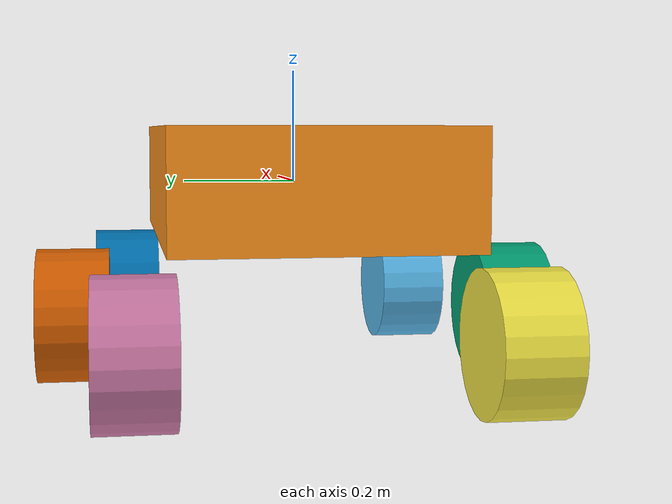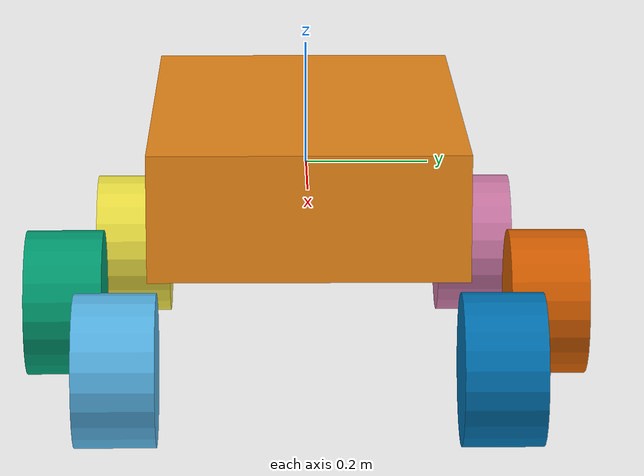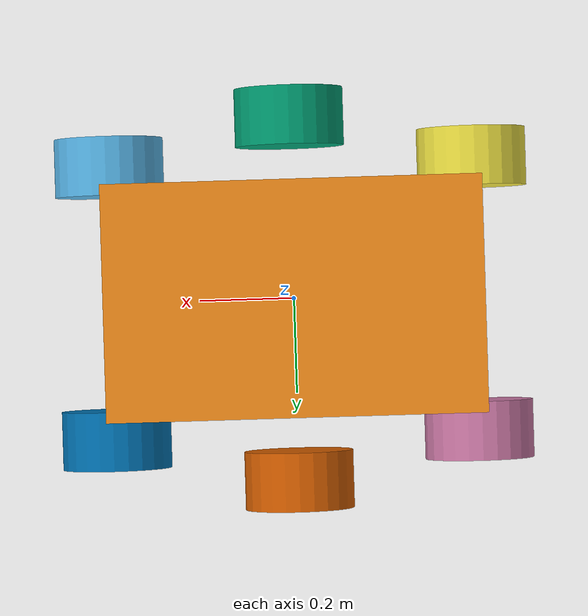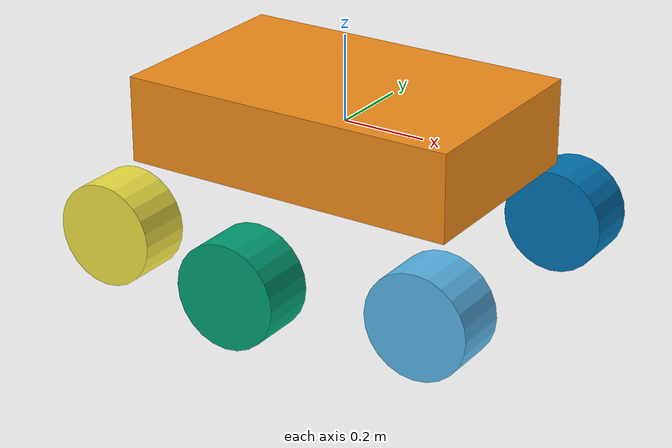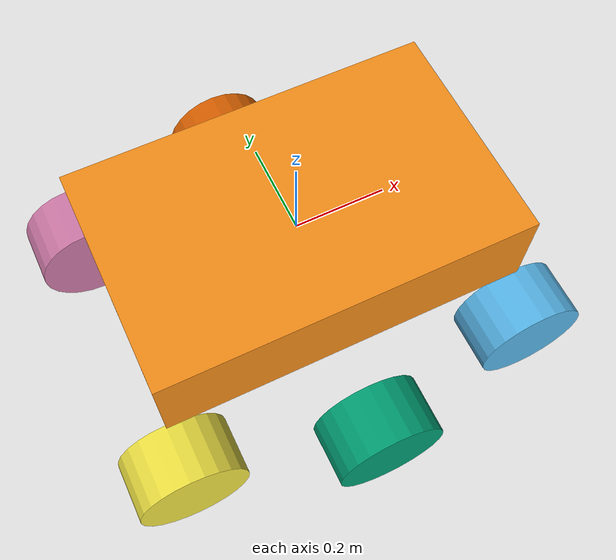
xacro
<?xml version="1.0"?>
<robot xmlns:xacro="http://www.ros.org/wiki/xacro" name="rover">

  <xacro:include filename="$(find protobot_description)/urdf/macro.xacro"/>

  <link name="base_link">
    <visual>
      <geometry>
        <box size="${body_length} ${body_width} ${body_height}"/>
      </geometry>
    </visual>
    <collision>
      <geometry>
        <box size="${body_length} ${body_width} ${body_height}"/>
      </geometry>
    </collision>
    <inertial>
      <origin xyz="0 0 0" rpy="0 0 0"/>
      <mass value="${body_mass}"/>
      <xacro:box_inertia m="${body_mass}" x="${body_length}" y="${body_width}" z="${body_height}"/>
    </inertial>
  </link>

  <link name="right_front_wheel"><xacro:wheel_visual_collision_inertia/></link>

  <joint name="right_front_wheel_pivot" type="continuous">
    <hardwareInterface>hardware_interface/VelocityJointInterface</hardwareInterface>
    <parent link="base_link"/>
    <child link="right_front_wheel"/>
    <origin xyz="${front_wheel_forward} -${front_wheel_out} -${wheel_height}"/>
    <axis xyz="0 1 0" />
  </joint>

  <link name="right_mid_wheel"><xacro:wheel_visual_collision_inertia/></link>

  <joint name="right_mid_wheel_pivot" type="continuous">
    <hardwareInterface>hardware_interface/VelocityJointInterface</hardwareInterface>
    <parent link="base_link"/>
    <child link="right_mid_wheel"/>
    <origin xyz="0 -${mid_wheel_out} -${wheel_height}"/>
    <axis xyz="0 1 0" />
  </joint>

  <link name="right_back_wheel"><xacro:wheel_visual_collision_inertia/></link>

  <joint name="right_back_wheel_pivot" type="continuous">
    <hardwareInterface>hardware_interface/VelocityJointInterface</hardwareInterface>
    <parent link="base_link"/>
    <child link="right_back_wheel"/>
    <origin xyz="-${rear_wheel_back} -${rear_wheel_out} -${wheel_height}"/>
    <axis xyz="0 1 0" />
  </joint>

  <link name="left_front_wheel"><xacro:wheel_visual_collision_inertia/></link>

  <joint name="left_front_wheel_pivot" type="continuous">
    <parent link="base_link"/>
    <child link="left_front_wheel"/>
    <origin xyz="${front_wheel_forward} ${front_wheel_out} -${wheel_height}"/>
    <axis xyz="0 1 0" />
  </joint>

  <link name="left_mid_wheel"><xacro:wheel_visual_collision_inertia/></link>

  <joint name="left_mid_wheel_pivot" type="continuous">
    <hardwareInterface>hardware_interface/VelocityJointInterface</hardwareInterface>
    <parent link="base_link"/>
    <child link="left_mid_wheel"/>
    <origin xyz="0 ${mid_wheel_out} -${wheel_height}"/>
    <axis xyz="0 1 0" />
  </joint>

  <link name="left_back_wheel"><xacro:wheel_visual_collision_inertia/></link>

  <joint name="left_back_wheel_pivot" type="continuous">
    <hardwareInterface>hardware_interface/VelocityJointInterface</hardwareInterface>
    <parent link="base_link"/>
    <child link="left_back_wheel"/>
    <origin xyz="-${rear_wheel_back} ${rear_wheel_out} -${wheel_height}"/>
    <axis xyz="0 1 0" />
  </joint>

  <gazebo reference="base_link">
    <material>Gazebo/Orange</material>
  </gazebo>

  <link name="gps_imu_link">
  </link>

  <link name="gps"></link>

  <joint name="ublox_gps_joint" type="fixed">
	<parent link="base_link"/>
	<child link="gps"/>
	<origin xyz="0 0 0"/>
</joint>

  <joint name="gps_imu_joint" type="fixed">
	  <parent link="base_link"/>
	  <child link="gps_imu_link"/>
	  <origin xyz="0 0 0"/>
  </joint>

  <gazebo>
    <plugin filename="libgazebo_ros_control.so" name="gazebo_ros_control">
    </plugin>
  </gazebo>

  <gazebo>
	<plugin name="gps_controller" filename="libhector_gazebo_ros_gps.so">
		<updateRate>30.0</updateRate>
		<bodyName>gps_imu_link</bodyName>
		<topicName>gps/fix</topicName>
		<frameId>gps_imu_link</frameId>
		<gaussianNoise>0</gaussianNoise>
	</plugin>
  </gazebo>

  <gazebo>
     <plugin name="imu_plugin" filename="libgazebo_ros_imu.so">
      <alwaysOn>true</alwaysOn>
      <bodyName>gps_imu_link</bodyName>
      <topicName>imu/data</topicName>
      <serviceName>imu_service</serviceName>
      <gaussianNoise>0</gaussianNoise>
      <updateRate>20.0</updateRate>
    </plugin>
  </gazebo>

  <gazebo reference="camera_link">
     <sensor type="depth" name="depth_camera">
      <plugin name="camera_link_controller" filename="libgazebo_ros_openni_kinect.so">
          <baseline>0.2</baseline>
          <alwaysOn>true</alwaysOn>
          <updateRate>1.0</updateRate>
          <cameraName>camera</cameraName>
          <imageTopicName>color/image_raw</imageTopicName>
	  <cameraInfoTopicName>color/camera_info</cameraInfoTopicName>
	  <depthImageTopicName>depth/image_raw</depthImageTopicName>
	  <depthImageInfoTopicName>depth/camera_info</depthImageInfoTopicName>
	  <pointCloudTopicName>depth/pointcloud</pointCloudTopicName>
          <frameName>cam_link_optical</frameName>
          <pointCloudCutoff>0.1</pointCloudCutoff>
	  <pointCloudCutoffMax>5</pointCloudCutoffMax>
          <distortionK1>0.00000001</distortionK1>
          <distortionK2>0.00000001</distortionK2>
          <distortionK3>0.00000001</distortionK3>
          <distortionT1>0.00000001</distortionT1>
          <distortionT2>0.00000001</distortionT2>
          <CxPrime>0</CxPrime>
          <Cx>0</Cx>
          <Cy>0</Cy>
          <focalLength>0</focalLength>
          <hackBaseline>0</hackBaseline>
      </plugin>
     </sensor>
  </gazebo>

  <transmission name="left_front_trans">
    <type>transmission_interface/SimpleTransmission</type>
    <actuator name="motor1">
      <mechanicalReduction>1</mechanicalReduction>
    </actuator>
    <joint name="left_front_wheel_pivot">
      <hardwareInterface>hardware_interface/VelocityJointInterface</hardwareInterface>
    </joint>
  </transmission>

  <transmission name="left_middle_trans">
    <type>transmission_interface/SimpleTransmission</type>
    <actuator name="motor1">
      <mechanicalReduction>1</mechanicalReduction>
    </actuator>
    <joint name="left_mid_wheel_pivot">
      <hardwareInterface>hardware_interface/VelocityJointInterface</hardwareInterface>
    </joint>
  </transmission>

  <transmission name="left_back_trans">
    <type>transmission_interface/SimpleTransmission</type>
    <actuator name="motor1">
      <mechanicalReduction>1</mechanicalReduction>
    </actuator>
    <joint name="left_back_wheel_pivot">
      <hardwareInterface>hardware_interface/VelocityJointInterface</hardwareInterface>
    </joint>
  </transmission>

  <transmission name="right_front_trans">
    <type>transmission_interface/SimpleTransmission</type>
    <actuator name="motor1">
      <mechanicalReduction>1</mechanicalReduction>
    </actuator>
    <joint name="right_front_wheel_pivot">
      <hardwareInterface>hardware_interface/VelocityJointInterface</hardwareInterface>
    </joint>
  </transmission>

  <transmission name="right_middle_trans">
    <type>transmission_interface/SimpleTransmission</type>
    <actuator name="motor1">
      <mechanicalReduction>1</mechanicalReduction>
    </actuator>
    <joint name="right_mid_wheel_pivot">
      <hardwareInterface>hardware_interface/VelocityJointInterface</hardwareInterface>
    </joint>
  </transmission>

  <transmission name="right_back_trans">
    <type>transmission_interface/SimpleTransmission</type>
    <actuator name="motor1">
      <mechanicalReduction>1</mechanicalReduction>
    </actuator>
    <joint name="right_back_wheel_pivot">
      <hardwareInterface>hardware_interface/VelocityJointInterface</hardwareInterface>
    </joint>
  </transmission>

</robot>

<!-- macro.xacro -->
<robot xmlns:xacro="http://www.ros.org/wiki/xacro" name="macros">

<xacro:property name="body_length" value="0.8"/>
<xacro:property name="body_width" value="0.5"/>
<xacro:property name="body_height" value="0.2"/>
<xacro:property name="body_mass" value="55"/>

<xacro:property name="wheel_radius" value="0.12"/>
<xacro:property name="wheel_width" value="0.128"/>
<xacro:property name="wheel_height" value="0.24"/>
<xacro:property name="wheel_mass" value="0.7"/>

<xacro:property name="front_wheel_forward" value="0.4"/>
<xacro:property name="front_wheel_out" value="0.3"/>
<xacro:property name="mid_wheel_out" value="0.4"/>
<xacro:property name="rear_wheel_back" value="0.4"/>
<xacro:property name="rear_wheel_out" value="0.3"/>

<xacro:macro name="box_inertia" params="m x y z">
  <inertia  ixx="${m*(y*y+z*z)/12}" ixy = "0" ixz = "0"
            iyy="${m*(x*x+z*z)/12}" iyz = "0"
            izz="${m*(x*x+z*z)/12}"/>
</xacro:macro>

<xacro:macro name="cylinder_inertia" params="m r h">
  <inertia    ixx="${m*(3*r*r+h*h)/12}" ixy = "0" ixz = "0"
              iyy="${m*(3*r*r+h*h)/12}" iyz = "0"
              izz="${m*r*r/2}"/>
</xacro:macro>

<xacro:macro name="wheel_visual_collision_inertia">
  <visual>
    <geometry>
      <cylinder length="${wheel_width}" radius="${wheel_radius}"/>
    </geometry>
    <origin rpy="${pi/2} 0 0"/>
  </visual>
  <collision>
    <geometry>
      <cylinder length="${wheel_width}" radius="${wheel_radius}"/>
    </geometry>
    <origin rpy="${pi/2} 0 0"/>
  </collision>
  <inertial>
    <mass value="${wheel_mass}"/>
    <xacro:cylinder_inertia m="${wheel_mass}" r="${wheel_radius}" h="${wheel_height}"/>
  </inertial>
</xacro:macro>

</robot>
